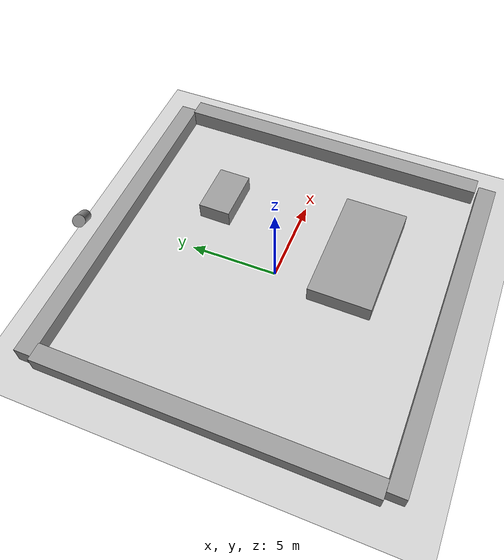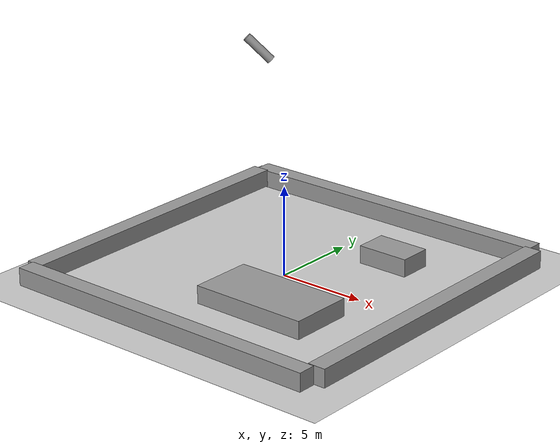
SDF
<sdf version="1.6">
 <world name="default">
  <light name="sun" type="directional">
   <pose>0 0 10 0 -0 0</pose>
   <diffuse>0.8 0.8 0.8 1</diffuse>
   <specular>0.1 0.1 0.1 1</specular>
   <attenuation>
    <range>1000</range>
    <constant>0.9</constant>
    <linear>0.01</linear>
    <quadratic>0.001</quadratic>
   </attenuation>
   <direction>-0.5 0.5 -1</direction>
  </light>
  <model name="ground_plane">
   <static>1</static>
   <link name="link">
    <collision name="collision">
     <geometry><plane><normal>0 0 1</normal><size>100 100</size></plane></geometry>
     <surface><friction><ode><mu>100</mu><mu2>50</mu2></ode></friction></surface>
    </collision>
    <visual name="visual">
     <cast_shadows>0</cast_shadows>
     <geometry><plane><normal>0 0 1</normal><size>100 100</size></plane></geometry>
     <material>
      <script><uri>file://media/materials/scripts/gazebo.material</uri><name>Gazebo/Grey</name></script>
     </material>
    </visual>
   </link>
  </model>
  <gravity>0 0 -9.8</gravity>
  <magnetic_field>6e-06 2.3e-05 -4.2e-05</magnetic_field>
  <atmosphere type="adiabatic"/>
  <physics name="default_physics" default="0" type="ode">
   <max_step_size>0.001</max_step_size>
   <real_time_factor>1</real_time_factor>
   <real_time_update_rate>1000</real_time_update_rate>
  </physics>
  <scene><ambient>0.4 0.4 0.4 1</ambient><background>0.7 0.7 0.7 1</background><shadows>1</shadows></scene>
  <spherical_coordinates>
   <surface_model>EARTH_WGS84</surface_model>
   <latitude_deg>0</latitude_deg>
   <longitude_deg>0</longitude_deg>
   <elevation>0</elevation>
   <heading_deg>0</heading_deg>
  </spherical_coordinates>
  <model name="unit_cylinder_0">
   <pose>-6.58572 5.6769 9.88437 0.531702 -0.640732 -0.18935</pose>
   <link name="link">
    <inertial>
     <mass>1</mass>
     <inertia><ixx>0.145833</ixx><ixy>0</ixy><ixz>0</ixz><iyy>0.145833</iyy><iyz>0</iyz><izz>0.125</izz></inertia>
    </inertial>
    <collision name="collision">
     <geometry><cylinder><radius>0.247144</radius><length>1.85852</length></cylinder></geometry>
    </collision>
    <visual name="visual">
     <geometry><cylinder><radius>0.247144</radius><length>1.85852</length></cylinder></geometry>
     <material>
      <script><name>Gazebo/Grey</name><uri>file://media/materials/scripts/gazebo.material</uri></script>
     </material>
    </visual>
    <gravity>0</gravity>
   </link>
  </model>
  <model name="unit_box_0_clone">
   <static>1</static>
   <pose>-9.46308 0.045637 0.596032 0.00591 -0.000238 -0.001415</pose>
   <link name="link">
    <inertial>
     <mass>1</mass>
     <inertia>
      <ixx>0.166667</ixx>
      <ixy>0</ixy>
      <ixz>0</ixz>
      <iyy>0.166667</iyy>
      <iyz>0</iyz>
      <izz>0.166667</izz>
     </inertia>
    </inertial>
    <collision name="collision"><geometry><box><size>1 18.2083 1</size></box></geometry></collision>
    <visual name="visual">
     <geometry><box><size>1 18.2083 1</size></box></geometry>
     <material>
      <script><name>Gazebo/Grey</name><uri>file://media/materials/scripts/gazebo.material</uri></script>
     </material>
    </visual>
    <gravity>0</gravity>
   </link>
  </model>
  <model name="unit_box_0_clone_clone">
   <static>1</static>
   <pose>9.5364 0.083512 0.596032 0.00591 -0.000238 -0.001415</pose>
   <link name="link">
    <inertial>
     <mass>1</mass>
     <inertia>
      <ixx>0.166667</ixx>
      <ixy>0</ixy>
      <ixz>0</ixz>
      <iyy>0.166667</iyy>
      <iyz>0</iyz>
      <izz>0.166667</izz>
     </inertia>
    </inertial>
    <collision name="collision"><geometry><box><size>1 18.2083 1</size></box></geometry></collision>
    <visual name="visual">
     <geometry><box><size>1 18.2083 1</size></box></geometry>
     <material>
      <script><name>Gazebo/Grey</name><uri>file://media/materials/scripts/gazebo.material</uri></script>
     </material>
    </visual>
    <gravity>0</gravity>
   </link>
  </model>
  <model name="unit_box_0_clone_clone_0">
   <static>1</static>
   <pose>-0.055291 -9.60877 0.596032 -0.000214 -0.005911 1.56533</pose>
   <link name="link">
    <inertial>
     <mass>1</mass>
     <inertia>
      <ixx>0.166667</ixx>
      <ixy>0</ixy>
      <ixz>0</ixz>
      <iyy>0.166667</iyy>
      <iyz>0</iyz>
      <izz>0.166667</izz>
     </inertia>
    </inertial>
    <collision name="collision"><geometry><box><size>1 19.0721 1</size></box></geometry></collision>
    <visual name="visual">
     <geometry><box><size>1 19.0721 1</size></box></geometry>
     <material>
      <script><name>Gazebo/Grey</name><uri>file://media/materials/scripts/gazebo.material</uri></script>
     </material>
    </visual>
    <gravity>0</gravity>
   </link>
  </model>
  <model name="unit_box_0_clone_clone_0_clone">
   <static>1</static>
   <pose>-0.196868 9.62647 0.595121 -0.00025 -0.00591 1.57145</pose>
   <link name="link">
    <inertial>
     <mass>1</mass>
     <inertia>
      <ixx>0.166667</ixx>
      <ixy>0</ixy>
      <ixz>0</ixz>
      <iyy>0.166667</iyy>
      <iyz>0</iyz>
      <izz>0.166667</izz>
     </inertia>
    </inertial>
    <collision name="collision"><geometry><box><size>1 19.0721 1</size></box></geometry></collision>
    <visual name="visual">
     <geometry><box><size>1 19.0721 1</size></box></geometry>
     <material>
      <script><name>Gazebo/Grey</name><uri>file://media/materials/scripts/gazebo.material</uri></script>
     </material>
    </visual>
    <gravity>0</gravity>
   </link>
  </model>
  <model name="unit_box_0_clone_clone_0_clone_0">
   <static>1</static>
   <pose>2.41599 -3.99696 0.596032 -0.000214 -0.005911 1.56533</pose>
   <link name="link">
    <inertial>
     <mass>1</mass>
     <inertia>
      <ixx>0.166667</ixx>
      <ixy>0</ixy>
      <ixz>0</ixz>
      <iyy>0.166667</iyy>
      <iyz>0</iyz>
      <izz>0.166667</izz>
     </inertia>
    </inertial>
    <collision name="collision"><geometry><box><size>3.57609 6.74084 1</size></box></geometry></collision>
    <visual name="visual">
     <geometry><box><size>3.57609 6.74084 1</size></box></geometry>
     <material>
      <script><name>Gazebo/Grey</name><uri>file://media/materials/scripts/gazebo.material</uri></script>
     </material>
    </visual>
    <gravity>0</gravity>
   </link>
  </model>
  <model name="unit_box_0_clone_clone_0_clone_0_clone">
   <static>1</static>
   <pose>3.67352 4.63052 0.596032 -0.000214 -0.005911 1.56533</pose>
   <link name="link">
    <inertial>
     <mass>1</mass>
     <inertia>
      <ixx>0.166667</ixx>
      <ixy>0</ixy>
      <ixz>0</ixz>
      <iyy>0.166667</iyy>
      <iyz>0</iyz>
      <izz>0.166667</izz>
     </inertia>
    </inertial>
    <collision name="collision"><geometry><box><size>1.84776 2.98602 1</size></box></geometry></collision>
    <visual name="visual">
     <geometry><box><size>1.84776 2.98602 1</size></box></geometry>
     <material>
      <script><name>Gazebo/Grey</name><uri>file://media/materials/scripts/gazebo.material</uri></script>
     </material>
    </visual>
    <gravity>0</gravity>
   </link>
  </model>
 </world>
</sdf>
